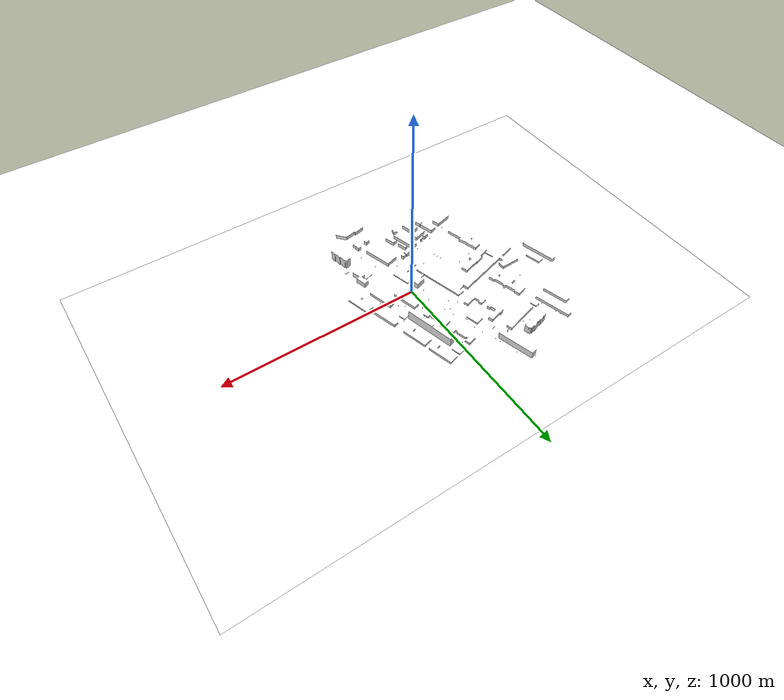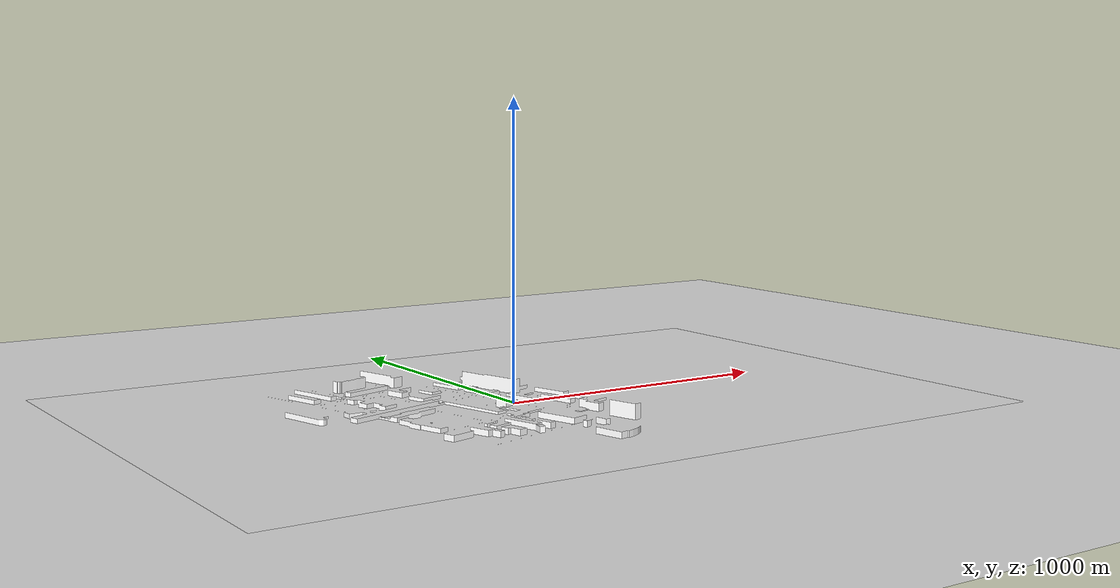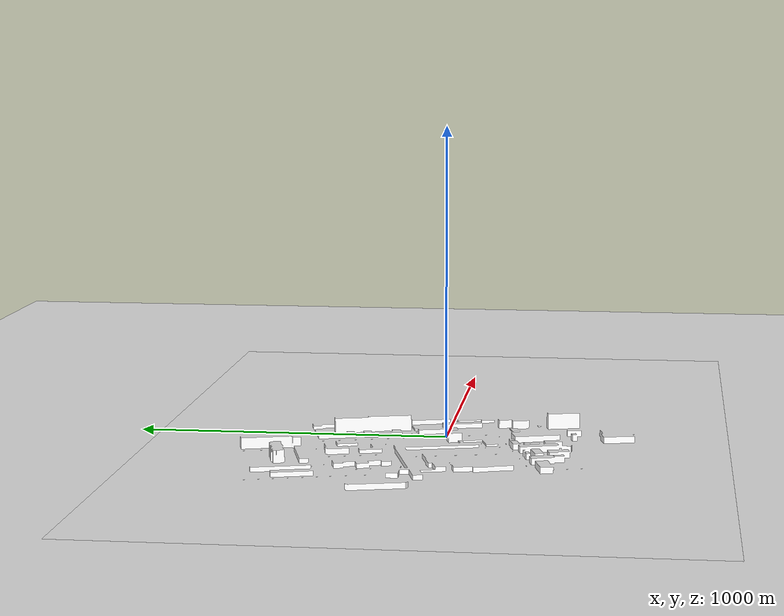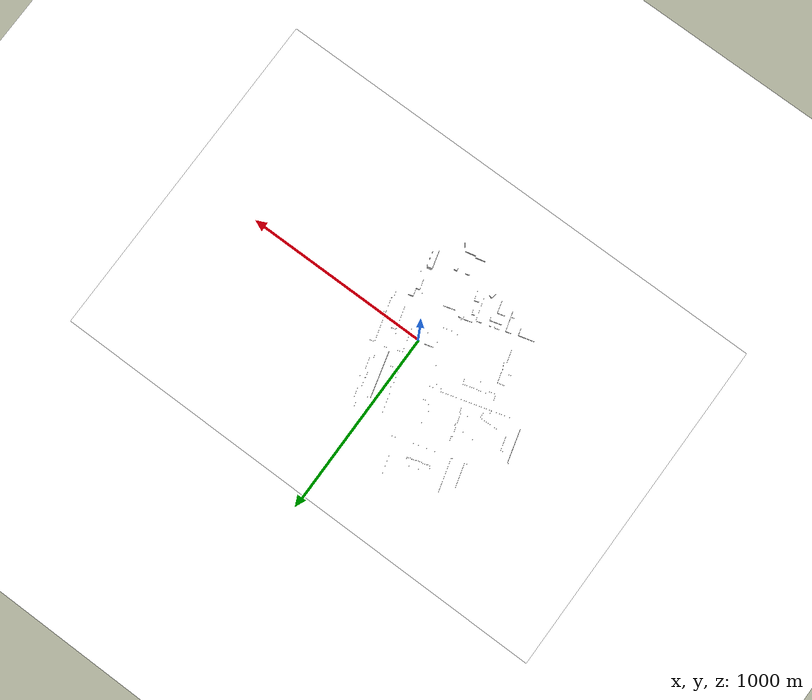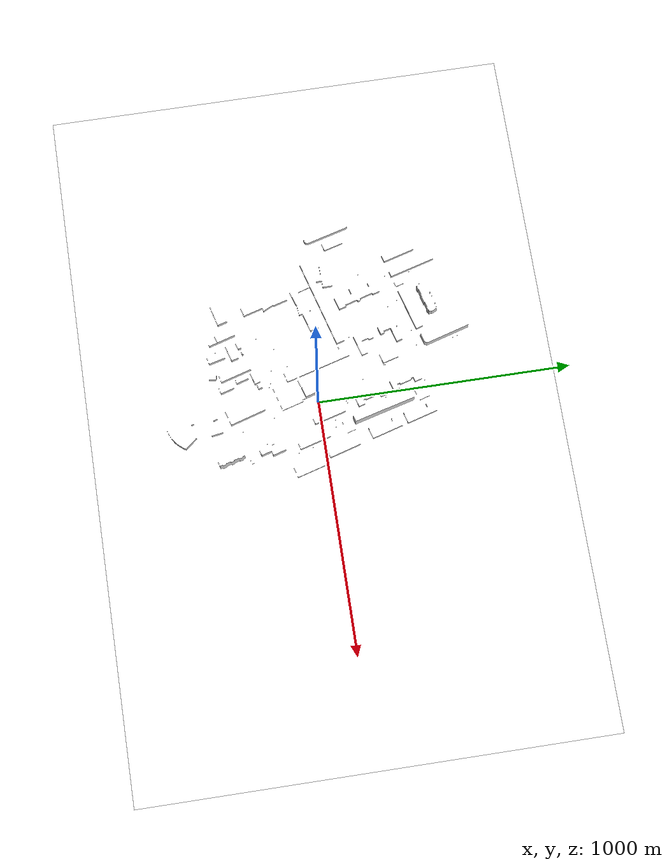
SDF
<?xml version="1.0" ?>
<sdf version="1.7">

	<model name='test'>

		<static>True</static>

		<link name='test_link'>
		<visual name='test_vis'>
		  <pose >0 0 0 0 -0 0</pose>
			<geometry>
				<mesh>
					<scale>1 1 1</scale>
					<uri>/home/student/Documents/rover/dae/map_last.dae</uri>
				</mesh>
			</geometry>
			<material>
				<ambient>1 1 1 1</ambient>
				<diffuse>1 1 1 1</diffuse>
				<specular>0.1 0.1 0.1 1</specular>
			</material>
		  </visual>
		  <collision name='test_col'>
				<pose >0 0 0 0 -0 0</pose>
				<geometry>
					<mesh>
						<scale>1 1 1</scale>
						<uri>/home/student/Documents/rover/dae/map_last.dae</uri>
					</mesh>
				</geometry>
		  </collision>
		</link>

		<link name='ground'>
			<pose >0 0 0.15 0 -0 0</pose>
		  <collision name='ground_collision'>
				<pose >0 0 0 0 -0 0</pose>
				<geometry>
					<plane>
						<normal>0 0 1</normal>
						<size>100 100</size>
					</plane>
				</geometry>
		  </collision>
		 	<visual name='ground_visual'>
		  <pose >0 0 0 0 -0 0</pose>
			<geometry>
				<plane>
					<normal>0 0 1</normal>
					<size>100 100</size>
				</plane>
			</geometry>
			<material>
				<ambient>1 1 1 1</ambient>
				<diffuse>1 1 1 1</diffuse>
				<specular>0.1 0.1 0.1 1</specular>
			</material>
		  </visual>
		</link>

	</model>

</sdf>
